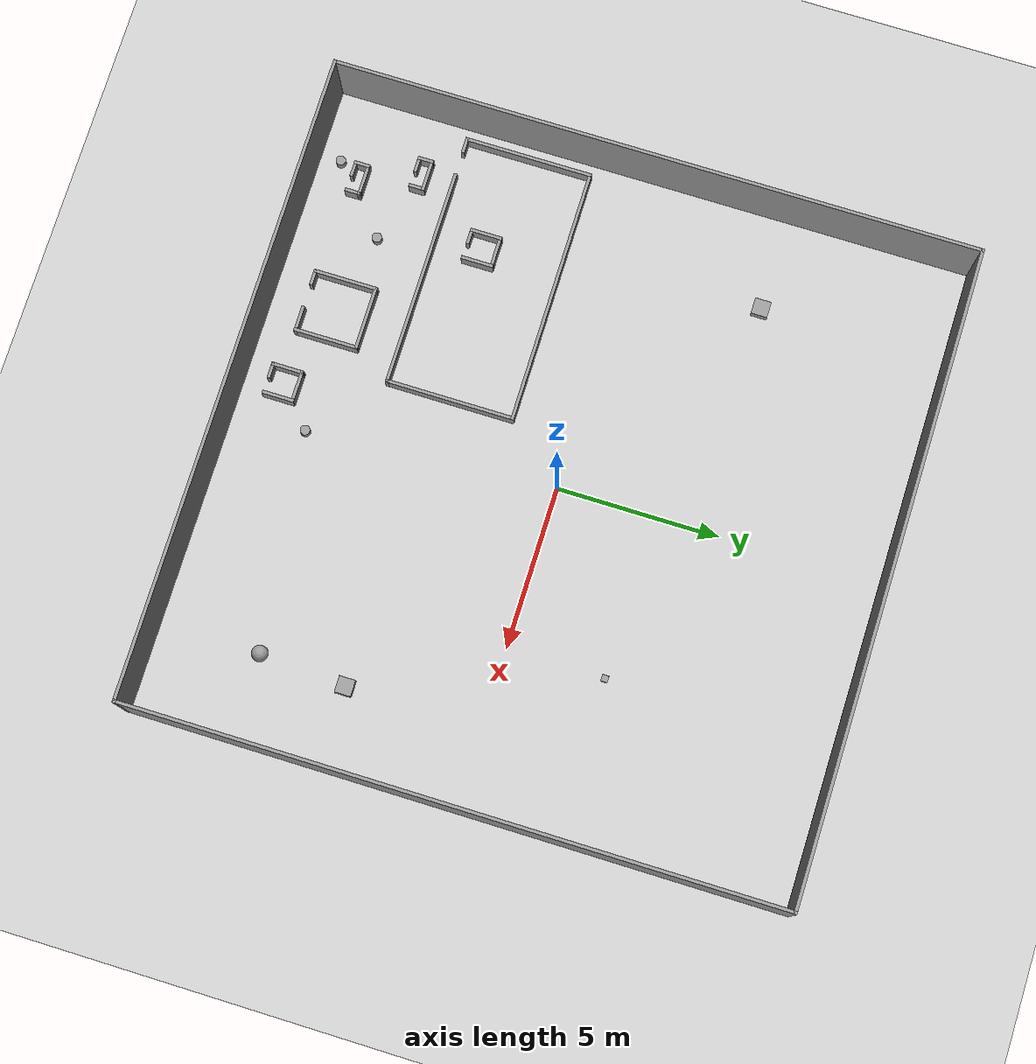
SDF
<sdf version="1.6">
 <world name="default">
  <model name="ground_plane">
   <static>1</static>
   <link name="link">
    <collision name="collision">
     <geometry><plane><normal>0 0 1</normal><size>20 20</size></plane></geometry>
     <surface>
      <contact><collide_bitmask>65535</collide_bitmask></contact>
      <friction><ode><mu>100</mu><mu2>50</mu2></ode></friction>
     </surface>
    </collision>
    <visual name="visual">
     <cast_shadows>0</cast_shadows>
     <geometry><plane><normal>0 0 1</normal><size>20 20</size></plane></geometry>
     <material>
      <script><uri>file://media/materials/scripts/gazebo.material</uri><name>Gazebo/Grey</name></script>
     </material>
    </visual>
   </link>
  </model>
  <model name="outsidewall.sdf">
   <link name="Wall_3">
    <collision name="Wall_3_Collision">
     <geometry><box><size>20 0.10 2.5</size></box></geometry>
     <pose>0 0 1.25 0 -0 0</pose>
    </collision>
    <visual name="Wall_3_Visual">
     <pose>0 0 1.25 0 -0 0</pose>
     <geometry><box><size>20 0.10 2.5</size></box></geometry>
     <material>
      <script><uri>file://media/materials/scripts/gazebo.material</uri><name>Gazebo/Grey</name></script>
      <ambient>1 1 1 1</ambient>
     </material>
     <meta><layer>0</layer></meta>
    </visual>
    <pose>0 9.95 0 0 -0 0</pose>
   </link>
   <link name="Wall_5">
    <collision name="Wall_5_Collision">
     <geometry><box><size>20 0.10 2.5</size></box></geometry>
     <pose>0 0 1.25 0 -0 0</pose>
    </collision>
    <visual name="Wall_5_Visual">
     <pose>0 0 1.25 0 -0 0</pose>
     <geometry><box><size>20 0.10 2.5</size></box></geometry>
     <material>
      <script><uri>file://media/materials/scripts/gazebo.material</uri><name>Gazebo/Grey</name></script>
      <ambient>1 1 1 1</ambient>
     </material>
     <meta><layer>0</layer></meta>
    </visual>
    <pose>-9.95 0 0 0 -0 1.5707</pose>
   </link>
   <link name="Wall_6">
    <collision name="Wall_6_Collision">
     <geometry><box><size>20 0.10 2.5</size></box></geometry>
     <pose>0 0 1.25 0 -0 0</pose>
    </collision>
    <visual name="Wall_6_Visual">
     <pose>0 0 1.25 0 -0 0</pose>
     <geometry><box><size>20 0.10 2.5</size></box></geometry>
     <material>
      <script><uri>file://media/materials/scripts/gazebo.material</uri><name>Gazebo/Grey</name></script>
      <ambient>1 1 1 1</ambient>
     </material>
     <meta><layer>0</layer></meta>
    </visual>
    <pose>0 -9.95 0 0 -0 0</pose>
   </link>
   <link name="Wall_7">
    <collision name="Wall_7_Collision">
     <geometry><box><size>20 0.10 2.5</size></box></geometry>
     <pose>0 0 1.25 0 -0 0</pose>
    </collision>
    <visual name="Wall_7_Visual">
     <pose>0 0 1.25 0 -0 0</pose>
     <geometry><box><size>20 0.10 2.5</size></box></geometry>
     <material>
      <script><uri>file://media/materials/scripts/gazebo.material</uri><name>Gazebo/Grey</name></script>
      <ambient>1 1 1 1</ambient>
     </material>
     <meta><layer>0</layer></meta>
    </visual>
    <pose>9.95 0 0 0 -0 1.5707</pose>
   </link>
   <static>1</static>
  </model>
  <model name="shape3">
   <pose>-5.5 -3.8 0 0 -0 0</pose>
   <link name="Wall_11">
    <collision name="Wall_11_Collision">
     <geometry><box><size>4 0.1 0.5</size></box></geometry>
     <pose>0 0 0.25 0 -0 0</pose>
    </collision>
    <visual name="Wall_11_Visual">
     <pose>0 0 0.25 0 -0 0</pose>
     <geometry><box><size>4 0.1 0.5</size></box></geometry>
     <material>
      <script><uri>file://media/materials/scripts/gazebo.material</uri><name>Gazebo/Grey</name></script>
      <ambient>1 1 1 1</ambient>
     </material>
     <meta><layer>0</layer></meta>
    </visual>
    <pose>-3.95 0 0 0 -0 -1.5708</pose>
   </link>
   <link name="Wall_12">
    <collision name="Wall_12_Collision">
     <geometry><box><size>0.5 0.1 0.5</size></box></geometry>
     <pose>0 0 0.25 0 -0 0</pose>
    </collision>
    <visual name="Wall_12_Visual">
     <pose>0 0 0.25 0 -0 0</pose>
     <geometry><box><size>0.5 0.1 0.5</size></box></geometry>
     <material>
      <script><uri>file://media/materials/scripts/gazebo.material</uri><name>Gazebo/Grey</name></script>
      <ambient>1 1 1 1</ambient>
     </material>
     <meta><layer>0</layer></meta>
    </visual>
    <pose>-3.75 -1.95 0 0 -0 0</pose>
   </link>
   <link name="Wall_7">
    <collision name="Wall_7_Collision">
     <geometry><box><size>8 0.1 0.5</size></box></geometry>
     <pose>0 0 0.25 0 -0 0</pose>
    </collision>
    <visual name="Wall_7_Visual">
     <pose>0 0 0.25 0 -0 0</pose>
     <geometry><box><size>8 0.1 0.5</size></box></geometry>
     <material>
      <script><uri>file://media/materials/scripts/gazebo.material</uri><name>Gazebo/Grey</name></script>
      <ambient>1 1 1 1</ambient>
     </material>
     <meta><layer>0</layer></meta>
    </visual>
    <pose>-0 1.95 0 0 -0 0</pose>
   </link>
   <link name="Wall_8">
    <collision name="Wall_8_Collision">
     <geometry><box><size>4 0.1 0.5</size></box></geometry>
     <pose>0 0 0.25 0 -0 0</pose>
    </collision>
    <visual name="Wall_8_Visual">
     <pose>0 0 0.25 0 -0 0</pose>
     <geometry><box><size>4 0.1 0.5</size></box></geometry>
     <material>
      <script><uri>file://media/materials/scripts/gazebo.material</uri><name>Gazebo/Grey</name></script>
      <ambient>1 1 1 1</ambient>
     </material>
     <meta><layer>0</layer></meta>
    </visual>
    <pose>3.95 0 0 0 -0 -1.5708</pose>
   </link>
   <link name="Wall_9">
    <collision name="Wall_9_Collision">
     <geometry><box><size>6.8 0.1 0.5</size></box></geometry>
     <pose>0 0 0.25 0 -0 0</pose>
    </collision>
    <visual name="Wall_9_Visual">
     <pose>0 0 0.25 0 -0 0</pose>
     <geometry><box><size>6.8 0.1 0.5</size></box></geometry>
     <material>
      <script><uri>file://media/materials/scripts/gazebo.material</uri><name>Gazebo/Grey</name></script>
      <ambient>1 1 1 1</ambient>
     </material>
     <meta><layer>0</layer></meta>
    </visual>
    <pose>0.6 -1.95 0 0 -0 3.14159</pose>
   </link>
   <static>1</static>
  </model>
  <model name="box_d=20">
   <link name="link_2">
    <inertial>
     <mass>1</mass>
     <inertia>
      <ixx>0.166667</ixx>
      <ixy>0</ixy>
      <ixz>0</ixz>
      <iyy>0.166667</iyy>
      <iyz>0</iyz>
      <izz>0.166667</izz>
     </inertia>
    </inertial>
    <pose>5 3 0 0 -0 0</pose>
    <visual name="visual">
     <geometry><box><size>0.2 0.2 0.2</size></box></geometry>
     <material>
      <lighting>1</lighting>
      <script><uri>file://media/materials/scripts/gazebo.material</uri><name>Gazebo/Grey</name></script>
      <shader type="vertex"><normal_map>__default__</normal_map></shader>
      <ambient>0.3 0.3 0.3 1</ambient>
      <diffuse>0.7 0.7 0.7 1</diffuse>
      <specular>0.01 0.01 0.01 1</specular>
      <emissive>0 0 0 1</emissive>
     </material>
    </visual>
    <collision name="collision">
     <geometry><box><size>0.2 0.2 0.2</size></box></geometry>
     <surface>
      <friction>
       <ode><mu>1</mu><mu2>1</mu2><fdir1>0 0 0</fdir1><slip1>0</slip1><slip2>0</slip2></ode>
       <torsional>
        <coefficient>1</coefficient>
        <patch_radius>0</patch_radius>
        <surface_radius>0</surface_radius>
        <use_patch_radius>1</use_patch_radius>
        <ode><slip>0</slip></ode>
       </torsional>
      </friction>
      <bounce><restitution_coefficient>0</restitution_coefficient><threshold>1e+06</threshold></bounce>
      <contact>
       <collide_without_contact>0</collide_without_contact>
       <collide_without_contact_bitmask>1</collide_without_contact_bitmask>
       <collide_bitmask>1</collide_bitmask>
       <ode>
        <soft_cfm>0</soft_cfm>
        <soft_erp>0.2</soft_erp>
        <kp>1e+13</kp>
        <kd>1</kd>
        <max_vel>0.01</max_vel>
        <min_depth>0</min_depth>
       </ode>
       <bullet>
        <split_impulse>1</split_impulse>
        <split_impulse_penetration_threshold>-0.01</split_impulse_penetration_threshold>
        <soft_cfm>0</soft_cfm>
        <soft_erp>0.2</soft_erp>
        <kp>1e+13</kp>
        <kd>1</kd>
       </bullet>
      </contact>
     </surface>
    </collision>
   </link>
   <static>0</static>
  </model>
  <model name="box_d=50">
   <link name="link_2">
    <inertial>
     <mass>1</mass>
     <inertia>
      <ixx>0.166667</ixx>
      <ixy>0</ixy>
      <ixz>0</ixz>
      <iyy>0.166667</iyy>
      <iyz>0</iyz>
      <izz>0.166667</izz>
     </inertia>
    </inertial>
    <pose>-7.05 4.25 0 0 -0 0</pose>
    <visual name="visual">
     <geometry><box><size>0.5 0.5 0.5</size></box></geometry>
     <material>
      <lighting>1</lighting>
      <script><uri>file://media/materials/scripts/gazebo.material</uri><name>Gazebo/Grey</name></script>
      <shader type="vertex"><normal_map>__default__</normal_map></shader>
      <ambient>0.3 0.3 0.3 1</ambient>
      <diffuse>0.7 0.7 0.7 1</diffuse>
      <specular>0.01 0.01 0.01 1</specular>
      <emissive>0 0 0 1</emissive>
     </material>
    </visual>
    <collision name="collision">
     <geometry><box><size>0.5 0.5 0.5</size></box></geometry>
     <surface>
      <friction>
       <ode><mu>1</mu><mu2>1</mu2><fdir1>0 0 0</fdir1><slip1>0</slip1><slip2>0</slip2></ode>
       <torsional>
        <coefficient>1</coefficient>
        <patch_radius>0</patch_radius>
        <surface_radius>0</surface_radius>
        <use_patch_radius>1</use_patch_radius>
        <ode><slip>0</slip></ode>
       </torsional>
      </friction>
      <bounce><restitution_coefficient>0</restitution_coefficient><threshold>1e+06</threshold></bounce>
      <contact>
       <collide_without_contact>0</collide_without_contact>
       <collide_without_contact_bitmask>1</collide_without_contact_bitmask>
       <collide_bitmask>1</collide_bitmask>
       <ode>
        <soft_cfm>0</soft_cfm>
        <soft_erp>0.2</soft_erp>
        <kp>1e+13</kp>
        <kd>1</kd>
        <max_vel>0.01</max_vel>
        <min_depth>0</min_depth>
       </ode>
       <bullet>
        <split_impulse>1</split_impulse>
        <split_impulse_penetration_threshold>-0.01</split_impulse_penetration_threshold>
        <soft_cfm>0</soft_cfm>
        <soft_erp>0.2</soft_erp>
        <kp>1e+13</kp>
        <kd>1</kd>
       </bullet>
      </contact>
     </surface>
    </collision>
   </link>
   <static>0</static>
  </model>
  <model name="cylinder_d=30">
   <link name="link_0">
    <inertial>
     <mass>1</mass>
     <inertia><ixx>0.145833</ixx><ixy>0</ixy><ixz>0</ixz><iyy>0.145833</iyy><iyz>0</iyz><izz>0.125</izz></inertia>
    </inertial>
    <pose>-7.75 -9.25 0 0 -0 0</pose>
    <visual name="visual">
     <geometry><cylinder><radius>0.15</radius><length>0.5</length></cylinder></geometry>
     <material>
      <lighting>1</lighting>
      <script><uri>file://media/materials/scripts/gazebo.material</uri><name>Gazebo/Grey</name></script>
      <shader type="vertex"><normal_map>__default__</normal_map></shader>
      <ambient>0.3 0.3 0.3 1</ambient>
      <diffuse>0.7 0.7 0.7 1</diffuse>
      <specular>0.01 0.01 0.01 1</specular>
      <emissive>0 0 0 1</emissive>
     </material>
    </visual>
    <collision name="collision">
     <geometry><cylinder><radius>0.15</radius><length>0.5</length></cylinder></geometry>
     <surface>
      <friction>
       <ode><mu>1</mu><mu2>1</mu2><fdir1>0 0 0</fdir1><slip1>0</slip1><slip2>0</slip2></ode>
       <torsional>
        <coefficient>1</coefficient>
        <patch_radius>0</patch_radius>
        <surface_radius>0</surface_radius>
        <use_patch_radius>1</use_patch_radius>
        <ode><slip>0</slip></ode>
       </torsional>
      </friction>
      <bounce><restitution_coefficient>0</restitution_coefficient><threshold>1e+06</threshold></bounce>
      <contact>
       <collide_without_contact>0</collide_without_contact>
       <collide_without_contact_bitmask>1</collide_without_contact_bitmask>
       <collide_bitmask>1</collide_bitmask>
       <ode>
        <soft_cfm>0</soft_cfm>
        <soft_erp>0.2</soft_erp>
        <kp>1e+13</kp>
        <kd>1</kd>
        <max_vel>0.01</max_vel>
        <min_depth>0</min_depth>
       </ode>
       <bullet>
        <split_impulse>1</split_impulse>
        <split_impulse_penetration_threshold>-0.01</split_impulse_penetration_threshold>
        <soft_cfm>0</soft_cfm>
        <soft_erp>0.2</soft_erp>
        <kp>1e+13</kp>
        <kd>1</kd>
       </bullet>
      </contact>
     </surface>
    </collision>
   </link>
   <static>0</static>
  </model>
  <model name="box_d=50">
   <link name="link_2">
    <inertial>
     <mass>1</mass>
     <inertia>
      <ixx>0.166667</ixx>
      <ixy>0</ixy>
      <ixz>0</ixz>
      <iyy>0.166667</iyy>
      <iyz>0</iyz>
      <izz>0.166667</izz>
     </inertia>
    </inertial>
    <pose>7.45 -4.15 0 0 -0 0</pose>
    <visual name="visual">
     <geometry><box><size>0.5 0.5 0.5</size></box></geometry>
     <material>
      <lighting>1</lighting>
      <script><uri>file://media/materials/scripts/gazebo.material</uri><name>Gazebo/Grey</name></script>
      <shader type="vertex"><normal_map>__default__</normal_map></shader>
      <ambient>0.3 0.3 0.3 1</ambient>
      <diffuse>0.7 0.7 0.7 1</diffuse>
      <specular>0.01 0.01 0.01 1</specular>
      <emissive>0 0 0 1</emissive>
     </material>
    </visual>
    <collision name="collision">
     <geometry><box><size>0.5 0.5 0.5</size></box></geometry>
     <surface>
      <friction>
       <ode><mu>1</mu><mu2>1</mu2><fdir1>0 0 0</fdir1><slip1>0</slip1><slip2>0</slip2></ode>
       <torsional>
        <coefficient>1</coefficient>
        <patch_radius>0</patch_radius>
        <surface_radius>0</surface_radius>
        <use_patch_radius>1</use_patch_radius>
        <ode><slip>0</slip></ode>
       </torsional>
      </friction>
      <bounce><restitution_coefficient>0</restitution_coefficient><threshold>1e+06</threshold></bounce>
      <contact>
       <collide_without_contact>0</collide_without_contact>
       <collide_without_contact_bitmask>1</collide_without_contact_bitmask>
       <collide_bitmask>1</collide_bitmask>
       <ode>
        <soft_cfm>0</soft_cfm>
        <soft_erp>0.2</soft_erp>
        <kp>1e+13</kp>
        <kd>1</kd>
        <max_vel>0.01</max_vel>
        <min_depth>0</min_depth>
       </ode>
       <bullet>
        <split_impulse>1</split_impulse>
        <split_impulse_penetration_threshold>-0.01</split_impulse_penetration_threshold>
        <soft_cfm>0</soft_cfm>
        <soft_erp>0.2</soft_erp>
        <kp>1e+13</kp>
        <kd>1</kd>
       </bullet>
      </contact>
     </surface>
    </collision>
   </link>
   <static>0</static>
  </model>
  <model name="cylinder_d=30">
   <link name="link_0">
    <inertial>
     <mass>1</mass>
     <inertia><ixx>0.145833</ixx><ixy>0</ixy><ixz>0</ixz><iyy>0.145833</iyy><iyz>0</iyz><izz>0.125</izz></inertia>
    </inertial>
    <pose>0.55 -7.65 0 0 -0 0</pose>
    <visual name="visual">
     <geometry><cylinder><radius>0.15</radius><length>0.5</length></cylinder></geometry>
     <material>
      <lighting>1</lighting>
      <script><uri>file://media/materials/scripts/gazebo.material</uri><name>Gazebo/Grey</name></script>
      <shader type="vertex"><normal_map>__default__</normal_map></shader>
      <ambient>0.3 0.3 0.3 1</ambient>
      <diffuse>0.7 0.7 0.7 1</diffuse>
      <specular>0.01 0.01 0.01 1</specular>
      <emissive>0 0 0 1</emissive>
     </material>
    </visual>
    <collision name="collision">
     <geometry><cylinder><radius>0.15</radius><length>0.5</length></cylinder></geometry>
     <surface>
      <friction>
       <ode><mu>1</mu><mu2>1</mu2><fdir1>0 0 0</fdir1><slip1>0</slip1><slip2>0</slip2></ode>
       <torsional>
        <coefficient>1</coefficient>
        <patch_radius>0</patch_radius>
        <surface_radius>0</surface_radius>
        <use_patch_radius>1</use_patch_radius>
        <ode><slip>0</slip></ode>
       </torsional>
      </friction>
      <bounce><restitution_coefficient>0</restitution_coefficient><threshold>1e+06</threshold></bounce>
      <contact>
       <collide_without_contact>0</collide_without_contact>
       <collide_without_contact_bitmask>1</collide_without_contact_bitmask>
       <collide_bitmask>1</collide_bitmask>
       <ode>
        <soft_cfm>0</soft_cfm>
        <soft_erp>0.2</soft_erp>
        <kp>1e+13</kp>
        <kd>1</kd>
        <max_vel>0.01</max_vel>
        <min_depth>0</min_depth>
       </ode>
       <bullet>
        <split_impulse>1</split_impulse>
        <split_impulse_penetration_threshold>-0.01</split_impulse_penetration_threshold>
        <soft_cfm>0</soft_cfm>
        <soft_erp>0.2</soft_erp>
        <kp>1e+13</kp>
        <kd>1</kd>
       </bullet>
      </contact>
     </surface>
    </collision>
   </link>
   <static>0</static>
  </model>
  <model name="cylinder_d=30">
   <link name="link_0">
    <inertial>
     <mass>1</mass>
     <inertia><ixx>0.145833</ixx><ixy>0</ixy><ixz>0</ixz><iyy>0.145833</iyy><iyz>0</iyz><izz>0.125</izz></inertia>
    </inertial>
    <pose>-5.75 -7.45 0 0 -0 0</pose>
    <visual name="visual">
     <geometry><cylinder><radius>0.15</radius><length>0.5</length></cylinder></geometry>
     <material>
      <lighting>1</lighting>
      <script><uri>file://media/materials/scripts/gazebo.material</uri><name>Gazebo/Grey</name></script>
      <shader type="vertex"><normal_map>__default__</normal_map></shader>
      <ambient>0.3 0.3 0.3 1</ambient>
      <diffuse>0.7 0.7 0.7 1</diffuse>
      <specular>0.01 0.01 0.01 1</specular>
      <emissive>0 0 0 1</emissive>
     </material>
    </visual>
    <collision name="collision">
     <geometry><cylinder><radius>0.15</radius><length>0.5</length></cylinder></geometry>
     <surface>
      <friction>
       <ode><mu>1</mu><mu2>1</mu2><fdir1>0 0 0</fdir1><slip1>0</slip1><slip2>0</slip2></ode>
       <torsional>
        <coefficient>1</coefficient>
        <patch_radius>0</patch_radius>
        <surface_radius>0</surface_radius>
        <use_patch_radius>1</use_patch_radius>
        <ode><slip>0</slip></ode>
       </torsional>
      </friction>
      <bounce><restitution_coefficient>0</restitution_coefficient><threshold>1e+06</threshold></bounce>
      <contact>
       <collide_without_contact>0</collide_without_contact>
       <collide_without_contact_bitmask>1</collide_without_contact_bitmask>
       <collide_bitmask>1</collide_bitmask>
       <ode>
        <soft_cfm>0</soft_cfm>
        <soft_erp>0.2</soft_erp>
        <kp>1e+13</kp>
        <kd>1</kd>
        <max_vel>0.01</max_vel>
        <min_depth>0</min_depth>
       </ode>
       <bullet>
        <split_impulse>1</split_impulse>
        <split_impulse_penetration_threshold>-0.01</split_impulse_penetration_threshold>
        <soft_cfm>0</soft_cfm>
        <soft_erp>0.2</soft_erp>
        <kp>1e+13</kp>
        <kd>1</kd>
       </bullet>
      </contact>
     </surface>
    </collision>
   </link>
   <static>0</static>
  </model>
  <model name="ball_d=50">
   <link name="link_1">
    <inertial>
     <mass>1</mass>
     <inertia><ixx>0.1</ixx><ixy>0</ixy><ixz>0</ixz><iyy>0.1</iyy><iyz>0</iyz><izz>0.1</izz></inertia>
    </inertial>
    <pose>7.25 -6.85 0 0 -0 0</pose>
    <visual name="visual">
     <geometry><sphere><radius>0.25</radius></sphere></geometry>
     <material>
      <lighting>1</lighting>
      <script><uri>file://media/materials/scripts/gazebo.material</uri><name>Gazebo/Grey</name></script>
      <shader type="vertex"><normal_map>__default__</normal_map></shader>
      <ambient>0.3 0.3 0.3 1</ambient>
      <diffuse>0.7 0.7 0.7 1</diffuse>
      <specular>0.01 0.01 0.01 1</specular>
      <emissive>0 0 0 1</emissive>
     </material>
    </visual>
    <collision name="collision">
     <geometry><sphere><radius>0.25</radius></sphere></geometry>
     <surface>
      <friction>
       <ode><mu>1</mu><mu2>1</mu2><fdir1>0 0 0</fdir1><slip1>0</slip1><slip2>0</slip2></ode>
       <torsional>
        <coefficient>1</coefficient>
        <patch_radius>0</patch_radius>
        <surface_radius>0</surface_radius>
        <use_patch_radius>1</use_patch_radius>
        <ode><slip>0</slip></ode>
       </torsional>
      </friction>
      <bounce><restitution_coefficient>0</restitution_coefficient><threshold>1e+06</threshold></bounce>
      <contact>
       <collide_without_contact>0</collide_without_contact>
       <collide_without_contact_bitmask>1</collide_without_contact_bitmask>
       <collide_bitmask>1</collide_bitmask>
       <ode>
        <soft_cfm>0</soft_cfm>
        <soft_erp>0.2</soft_erp>
        <kp>1e+13</kp>
        <kd>1</kd>
        <max_vel>0.01</max_vel>
        <min_depth>0</min_depth>
       </ode>
       <bullet>
        <split_impulse>1</split_impulse>
        <split_impulse_penetration_threshold>-0.01</split_impulse_penetration_threshold>
        <soft_cfm>0</soft_cfm>
        <soft_erp>0.2</soft_erp>
        <kp>1e+13</kp>
        <kd>1</kd>
       </bullet>
      </contact>
     </surface>
    </collision>
   </link>
   <static>0</static>
  </model>
  <model name="shape4">
   <pose>-0.6 -8.7 0 0 -0 0</pose>
   <link name="Wall_14">
    <collision name="Wall_14_Collision">
     <geometry><box><size>1 0.1 0.5</size></box></geometry>
     <pose>0 0 0.25 0 -0 0</pose>
    </collision>
    <visual name="Wall_14_Visual">
     <pose>0 0 0.25 0 -0 0</pose>
     <geometry><box><size>1 0.1 0.5</size></box></geometry>
     <material>
      <script><uri>file://media/materials/scripts/gazebo.material</uri><name>Gazebo/Grey</name></script>
      <ambient>1 1 1 1</ambient>
     </material>
     <meta><layer>0</layer></meta>
    </visual>
    <pose>-0 0.45 0 0 -0 0</pose>
   </link>
   <link name="Wall_15">
    <collision name="Wall_15_Collision">
     <geometry><box><size>1 0.1 0.5</size></box></geometry>
     <pose>0 0 0.25 0 -0 0</pose>
    </collision>
    <visual name="Wall_15_Visual">
     <pose>0 0 0.25 0 -0 0</pose>
     <geometry><box><size>1 0.1 0.5</size></box></geometry>
     <material>
      <script><uri>file://media/materials/scripts/gazebo.material</uri><name>Gazebo/Grey</name></script>
      <ambient>1 1 1 1</ambient>
     </material>
     <meta><layer>0</layer></meta>
    </visual>
    <pose>0.45 -0 0 0 -0 -1.5708</pose>
   </link>
   <link name="Wall_17">
    <collision name="Wall_17_Collision">
     <geometry><box><size>1 0.1 0.5</size></box></geometry>
     <pose>0 0 0.25 0 -0 0</pose>
    </collision>
    <visual name="Wall_17_Visual">
     <pose>0 0 0.25 0 -0 0</pose>
     <geometry><box><size>1 0.1 0.5</size></box></geometry>
     <material>
      <script><uri>file://media/materials/scripts/gazebo.material</uri><name>Gazebo/Grey</name></script>
      <ambient>1 1 1 1</ambient>
     </material>
     <meta><layer>0</layer></meta>
    </visual>
    <pose>-0.45 -0 0 0 -0 -1.5708</pose>
   </link>
   <link name="Wall_18">
    <collision name="Wall_18_Collision">
     <geometry><box><size>0.5 0.1 0.5</size></box></geometry>
     <pose>0 0 0.25 0 -0 0</pose>
    </collision>
    <visual name="Wall_18_Visual">
     <pose>0 0 0.25 0 -0 0</pose>
     <geometry><box><size>0.5 0.1 0.5</size></box></geometry>
     <material>
      <script><uri>file://media/materials/scripts/gazebo.material</uri><name>Gazebo/Grey</name></script>
      <ambient>1 1 1 1</ambient>
     </material>
     <meta><layer>0</layer></meta>
    </visual>
    <pose>-0.25 -0.45 0 0 -0 0</pose>
   </link>
   <static>1</static>
  </model>
  <model name="shape5">
   <pose>-3.2 -7.9 0 0 -0 0</pose>
   <link name="Wall_20">
    <collision name="Wall_20_Collision">
     <geometry><box><size>2 0.1 0.5</size></box></geometry>
     <pose>0 0 0.25 0 -0 0</pose>
    </collision>
    <visual name="Wall_20_Visual">
     <pose>0 0 0.25 0 -0 0</pose>
     <geometry><box><size>2 0.1 0.5</size></box></geometry>
     <material>
      <script><uri>file://media/materials/scripts/gazebo.material</uri><name>Gazebo/Grey</name></script>
      <ambient>1 1 1 1</ambient>
     </material>
     <meta><layer>0</layer></meta>
    </visual>
    <pose>-0 0.95 0 0 -0 0</pose>
   </link>
   <link name="Wall_21">
    <collision name="Wall_21_Collision">
     <geometry><box><size>2 0.1 0.5</size></box></geometry>
     <pose>0 0 0.25 0 -0 0</pose>
    </collision>
    <visual name="Wall_21_Visual">
     <pose>0 0 0.25 0 -0 0</pose>
     <geometry><box><size>2 0.1 0.5</size></box></geometry>
     <material>
      <script><uri>file://media/materials/scripts/gazebo.material</uri><name>Gazebo/Grey</name></script>
      <ambient>1 1 1 1</ambient>
     </material>
     <meta><layer>0</layer></meta>
    </visual>
    <pose>0.95 0 0 0 -0 -1.5708</pose>
   </link>
   <link name="Wall_22">
    <collision name="Wall_22_Collision">
     <geometry><box><size>0.8 0.1 0.5</size></box></geometry>
     <pose>0 0 0.25 0 -0 0</pose>
    </collision>
    <visual name="Wall_22_Visual">
     <pose>0 0 0.25 0 -0 0</pose>
     <geometry><box><size>0.8 0.1 0.5</size></box></geometry>
     <material>
      <script><uri>file://media/materials/scripts/gazebo.material</uri><name>Gazebo/Grey</name></script>
      <ambient>1 1 1 1</ambient>
     </material>
     <meta><layer>0</layer></meta>
    </visual>
    <pose>0.6 -0.95 0 0 -0 3.14159</pose>
   </link>
   <link name="Wall_24">
    <collision name="Wall_24_Collision">
     <geometry><box><size>2 0.1 0.5</size></box></geometry>
     <pose>0 0 0.25 0 -0 0</pose>
    </collision>
    <visual name="Wall_24_Visual">
     <pose>0 0 0.25 0 -0 0</pose>
     <geometry><box><size>2 0.1 0.5</size></box></geometry>
     <material>
      <script><uri>file://media/materials/scripts/gazebo.material</uri><name>Gazebo/Grey</name></script>
      <ambient>1 1 1 1</ambient>
     </material>
     <meta><layer>0</layer></meta>
    </visual>
    <pose>-0.95 0 0 0 -0 -1.5708</pose>
   </link>
   <link name="Wall_25">
    <collision name="Wall_25_Collision">
     <geometry><box><size>0.5 0.1 0.5</size></box></geometry>
     <pose>0 0 0.25 0 -0 0</pose>
    </collision>
    <visual name="Wall_25_Visual">
     <pose>0 0 0.25 0 -0 0</pose>
     <geometry><box><size>0.5 0.1 0.5</size></box></geometry>
     <material>
      <script><uri>file://media/materials/scripts/gazebo.material</uri><name>Gazebo/Grey</name></script>
      <ambient>1 1 1 1</ambient>
     </material>
     <meta><layer>0</layer></meta>
    </visual>
    <pose>-0.75 -0.95 0 0 -0 0</pose>
   </link>
   <static>1</static>
  </model>
  <model name="shape0">
   <pose>-7.3 -8.55 0 0 -0 0</pose>
   <link name="Wall_0">
    <pose>0 0.2 0 0 -0 0</pose>
    <inertial>
     <mass>1</mass>
     <inertia><ixx>1</ixx><ixy>0</ixy><ixz>0</ixz><iyy>1</iyy><iyz>0</iyz><izz>1</izz></inertia>
    </inertial>
    <visual name="Wall_0_Visual">
     <pose>0 0 0.25 0 -0 0</pose>
     <geometry><box><size>1 0.1 0.5</size></box></geometry>
     <material>
      <script><uri>file://media/materials/scripts/gazebo.material</uri><name>Gazebo/Grey</name></script>
      <ambient>1 1 1 1</ambient>
      <shader type="vertex"><normal_map>__default__</normal_map></shader>
      <diffuse>0.7 0.7 0.7 1</diffuse>
      <specular>0.01 0.01 0.01 1</specular>
      <emissive>0 0 0 1</emissive>
     </material>
     <meta><layer>0</layer></meta>
    </visual>
    <collision name="Wall_0_Collision">
     <pose>0 0 0.25 0 -0 0</pose>
     <geometry><box><size>1 0.1 0.5</size></box></geometry>
     <surface>
      <friction>
       <ode><mu>1</mu><mu2>1</mu2><fdir1>0 0 0</fdir1><slip1>0</slip1><slip2>0</slip2></ode>
       <torsional>
        <coefficient>1</coefficient>
        <patch_radius>0</patch_radius>
        <surface_radius>0</surface_radius>
        <use_patch_radius>1</use_patch_radius>
        <ode><slip>0</slip></ode>
       </torsional>
      </friction>
      <bounce><restitution_coefficient>0</restitution_coefficient><threshold>1e+06</threshold></bounce>
      <contact>
       <collide_without_contact>0</collide_without_contact>
       <collide_without_contact_bitmask>1</collide_without_contact_bitmask>
       <collide_bitmask>1</collide_bitmask>
       <ode>
        <soft_cfm>0</soft_cfm>
        <soft_erp>0.2</soft_erp>
        <kp>1e+13</kp>
        <kd>1</kd>
        <max_vel>0.01</max_vel>
        <min_depth>0</min_depth>
       </ode>
       <bullet>
        <split_impulse>1</split_impulse>
        <split_impulse_penetration_threshold>-0.01</split_impulse_penetration_threshold>
        <soft_cfm>0</soft_cfm>
        <soft_erp>0.2</soft_erp>
        <kp>1e+13</kp>
        <kd>1</kd>
       </bullet>
      </contact>
     </surface>
    </collision>
   </link>
   <link name="Wall_2">
    <pose>-0.45 0 0.01 0 0 -1.5708</pose>
    <inertial>
     <mass>1</mass>
     <inertia><ixx>1</ixx><ixy>0</ixy><ixz>0</ixz><iyy>1</iyy><iyz>0</iyz><izz>1</izz></inertia>
    </inertial>
    <visual name="Wall_2_Visual">
     <pose>0 0 0.25 0 -0 0</pose>
     <geometry><box><size>0.5 0.1 0.5</size></box></geometry>
     <material>
      <script><uri>file://media/materials/scripts/gazebo.material</uri><name>Gazebo/Grey</name></script>
      <ambient>1 1 1 1</ambient>
      <shader type="vertex"><normal_map>__default__</normal_map></shader>
      <diffuse>0.7 0.7 0.7 1</diffuse>
      <specular>0.01 0.01 0.01 1</specular>
      <emissive>0 0 0 1</emissive>
     </material>
     <meta><layer>0</layer></meta>
    </visual>
    <collision name="Wall_2_Collision">
     <pose>0 0 0.25 0 -0 0</pose>
     <geometry><box><size>0.5 0.1 0.5</size></box></geometry>
     <surface>
      <friction>
       <ode><mu>1</mu><mu2>1</mu2><fdir1>0 0 0</fdir1><slip1>0</slip1><slip2>0</slip2></ode>
       <torsional>
        <coefficient>1</coefficient>
        <patch_radius>0</patch_radius>
        <surface_radius>0</surface_radius>
        <use_patch_radius>1</use_patch_radius>
        <ode><slip>0</slip></ode>
       </torsional>
      </friction>
      <bounce><restitution_coefficient>0</restitution_coefficient><threshold>1e+06</threshold></bounce>
      <contact>
       <collide_without_contact>0</collide_without_contact>
       <collide_without_contact_bitmask>1</collide_without_contact_bitmask>
       <collide_bitmask>1</collide_bitmask>
       <ode>
        <soft_cfm>0</soft_cfm>
        <soft_erp>0.2</soft_erp>
        <kp>1e+13</kp>
        <kd>1</kd>
        <max_vel>0.01</max_vel>
        <min_depth>0</min_depth>
       </ode>
       <bullet>
        <split_impulse>1</split_impulse>
        <split_impulse_penetration_threshold>-0.01</split_impulse_penetration_threshold>
        <soft_cfm>0</soft_cfm>
        <soft_erp>0.2</soft_erp>
        <kp>1e+13</kp>
        <kd>1</kd>
       </bullet>
      </contact>
     </surface>
    </collision>
   </link>
   <link name="Wall_4">
    <pose>0.45 0 0 0 0 -1.5708</pose>
    <inertial>
     <mass>1</mass>
     <inertia><ixx>1</ixx><ixy>0</ixy><ixz>0</ixz><iyy>1</iyy><iyz>0</iyz><izz>1</izz></inertia>
    </inertial>
    <visual name="Wall_4_Visual">
     <pose>0 0 0.25 0 -0 0</pose>
     <geometry><box><size>0.5 0.1 0.5</size></box></geometry>
     <material>
      <script><uri>file://media/materials/scripts/gazebo.material</uri><name>Gazebo/Grey</name></script>
      <ambient>1 1 1 1</ambient>
      <shader type="vertex"><normal_map>__default__</normal_map></shader>
      <diffuse>0.7 0.7 0.7 1</diffuse>
      <specular>0.01 0.01 0.01 1</specular>
      <emissive>0 0 0 1</emissive>
     </material>
     <meta><layer>0</layer></meta>
    </visual>
    <collision name="Wall_4_Collision">
     <pose>0 0 0.25 0 -0 0</pose>
     <geometry><box><size>0.5 0.1 0.5</size></box></geometry>
     <surface>
      <friction>
       <ode><mu>1</mu><mu2>1</mu2><fdir1>0 0 0</fdir1><slip1>0</slip1><slip2>0</slip2></ode>
       <torsional>
        <coefficient>1</coefficient>
        <patch_radius>0</patch_radius>
        <surface_radius>0</surface_radius>
        <use_patch_radius>1</use_patch_radius>
        <ode><slip>0</slip></ode>
       </torsional>
      </friction>
      <bounce><restitution_coefficient>0</restitution_coefficient><threshold>1e+06</threshold></bounce>
      <contact>
       <collide_without_contact>0</collide_without_contact>
       <collide_without_contact_bitmask>1</collide_without_contact_bitmask>
       <collide_bitmask>1</collide_bitmask>
       <ode>
        <soft_cfm>0</soft_cfm>
        <soft_erp>0.2</soft_erp>
        <kp>1e+13</kp>
        <kd>1</kd>
        <max_vel>0.01</max_vel>
        <min_depth>0</min_depth>
       </ode>
       <bullet>
        <split_impulse>1</split_impulse>
        <split_impulse_penetration_threshold>-0.01</split_impulse_penetration_threshold>
        <soft_cfm>0</soft_cfm>
        <soft_erp>0.2</soft_erp>
        <kp>1e+13</kp>
        <kd>1</kd>
       </bullet>
      </contact>
     </surface>
    </collision>
   </link>
   <link name="Wall_7">
    <pose>-0.25 -0.2 0 0 -0 0</pose>
    <inertial>
     <mass>1</mass>
     <inertia><ixx>1</ixx><ixy>0</ixy><ixz>0</ixz><iyy>1</iyy><iyz>0</iyz><izz>1</izz></inertia>
    </inertial>
    <visual name="Wall_7_Visual">
     <pose>0 0 0.25 0 -0 0</pose>
     <geometry><box><size>0.5 0.1 0.5</size></box></geometry>
     <material>
      <script><uri>file://media/materials/scripts/gazebo.material</uri><name>Gazebo/Grey</name></script>
      <ambient>1 1 1 1</ambient>
      <shader type="vertex"><normal_map>__default__</normal_map></shader>
      <diffuse>0.7 0.7 0.7 1</diffuse>
      <specular>0.01 0.01 0.01 1</specular>
      <emissive>0 0 0 1</emissive>
     </material>
     <meta><layer>0</layer></meta>
    </visual>
    <collision name="Wall_7_Collision">
     <pose>0 0 0.25 0 -0 0</pose>
     <geometry><box><size>0.5 0.1 0.5</size></box></geometry>
     <surface>
      <friction>
       <ode><mu>1</mu><mu2>1</mu2><fdir1>0 0 0</fdir1><slip1>0</slip1><slip2>0</slip2></ode>
       <torsional>
        <coefficient>1</coefficient>
        <patch_radius>0</patch_radius>
        <surface_radius>0</surface_radius>
        <use_patch_radius>1</use_patch_radius>
        <ode><slip>0</slip></ode>
       </torsional>
      </friction>
      <bounce><restitution_coefficient>0</restitution_coefficient><threshold>1e+06</threshold></bounce>
      <contact>
       <collide_without_contact>0</collide_without_contact>
       <collide_without_contact_bitmask>1</collide_without_contact_bitmask>
       <collide_bitmask>1</collide_bitmask>
       <ode>
        <soft_cfm>0</soft_cfm>
        <soft_erp>0.2</soft_erp>
        <kp>1e+13</kp>
        <kd>1</kd>
        <max_vel>0.01</max_vel>
        <min_depth>0</min_depth>
       </ode>
       <bullet>
        <split_impulse>1</split_impulse>
        <split_impulse_penetration_threshold>-0.01</split_impulse_penetration_threshold>
        <soft_cfm>0</soft_cfm>
        <soft_erp>0.2</soft_erp>
        <kp>1e+13</kp>
        <kd>1</kd>
       </bullet>
      </contact>
     </surface>
    </collision>
   </link>
   <static>1</static>
  </model>
  <model name="shape0">
   <pose>-8 -6.75 0 0 -0 0</pose>
   <link name="Wall_0">
    <pose>0 0.2 0 0 -0 0</pose>
    <inertial>
     <mass>1</mass>
     <inertia><ixx>1</ixx><ixy>0</ixy><ixz>0</ixz><iyy>1</iyy><iyz>0</iyz><izz>1</izz></inertia>
    </inertial>
    <visual name="Wall_0_Visual">
     <pose>0 0 0.25 0 -0 0</pose>
     <geometry><box><size>1 0.1 0.5</size></box></geometry>
     <material>
      <script><uri>file://media/materials/scripts/gazebo.material</uri><name>Gazebo/Grey</name></script>
      <ambient>1 1 1 1</ambient>
      <shader type="vertex"><normal_map>__default__</normal_map></shader>
      <diffuse>0.7 0.7 0.7 1</diffuse>
      <specular>0.01 0.01 0.01 1</specular>
      <emissive>0 0 0 1</emissive>
     </material>
     <meta><layer>0</layer></meta>
    </visual>
    <collision name="Wall_0_Collision">
     <pose>0 0 0.25 0 -0 0</pose>
     <geometry><box><size>1 0.1 0.5</size></box></geometry>
     <surface>
      <friction>
       <ode><mu>1</mu><mu2>1</mu2><fdir1>0 0 0</fdir1><slip1>0</slip1><slip2>0</slip2></ode>
       <torsional>
        <coefficient>1</coefficient>
        <patch_radius>0</patch_radius>
        <surface_radius>0</surface_radius>
        <use_patch_radius>1</use_patch_radius>
        <ode><slip>0</slip></ode>
       </torsional>
      </friction>
      <bounce><restitution_coefficient>0</restitution_coefficient><threshold>1e+06</threshold></bounce>
      <contact>
       <collide_without_contact>0</collide_without_contact>
       <collide_without_contact_bitmask>1</collide_without_contact_bitmask>
       <collide_bitmask>1</collide_bitmask>
       <ode>
        <soft_cfm>0</soft_cfm>
        <soft_erp>0.2</soft_erp>
        <kp>1e+13</kp>
        <kd>1</kd>
        <max_vel>0.01</max_vel>
        <min_depth>0</min_depth>
       </ode>
       <bullet>
        <split_impulse>1</split_impulse>
        <split_impulse_penetration_threshold>-0.01</split_impulse_penetration_threshold>
        <soft_cfm>0</soft_cfm>
        <soft_erp>0.2</soft_erp>
        <kp>1e+13</kp>
        <kd>1</kd>
       </bullet>
      </contact>
     </surface>
    </collision>
   </link>
   <link name="Wall_2">
    <pose>-0.45 0 0.01 0 0 -1.5708</pose>
    <inertial>
     <mass>1</mass>
     <inertia><ixx>1</ixx><ixy>0</ixy><ixz>0</ixz><iyy>1</iyy><iyz>0</iyz><izz>1</izz></inertia>
    </inertial>
    <visual name="Wall_2_Visual">
     <pose>0 0 0.25 0 -0 0</pose>
     <geometry><box><size>0.5 0.1 0.5</size></box></geometry>
     <material>
      <script><uri>file://media/materials/scripts/gazebo.material</uri><name>Gazebo/Grey</name></script>
      <ambient>1 1 1 1</ambient>
      <shader type="vertex"><normal_map>__default__</normal_map></shader>
      <diffuse>0.7 0.7 0.7 1</diffuse>
      <specular>0.01 0.01 0.01 1</specular>
      <emissive>0 0 0 1</emissive>
     </material>
     <meta><layer>0</layer></meta>
    </visual>
    <collision name="Wall_2_Collision">
     <pose>0 0 0.25 0 -0 0</pose>
     <geometry><box><size>0.5 0.1 0.5</size></box></geometry>
     <surface>
      <friction>
       <ode><mu>1</mu><mu2>1</mu2><fdir1>0 0 0</fdir1><slip1>0</slip1><slip2>0</slip2></ode>
       <torsional>
        <coefficient>1</coefficient>
        <patch_radius>0</patch_radius>
        <surface_radius>0</surface_radius>
        <use_patch_radius>1</use_patch_radius>
        <ode><slip>0</slip></ode>
       </torsional>
      </friction>
      <bounce><restitution_coefficient>0</restitution_coefficient><threshold>1e+06</threshold></bounce>
      <contact>
       <collide_without_contact>0</collide_without_contact>
       <collide_without_contact_bitmask>1</collide_without_contact_bitmask>
       <collide_bitmask>1</collide_bitmask>
       <ode>
        <soft_cfm>0</soft_cfm>
        <soft_erp>0.2</soft_erp>
        <kp>1e+13</kp>
        <kd>1</kd>
        <max_vel>0.01</max_vel>
        <min_depth>0</min_depth>
       </ode>
       <bullet>
        <split_impulse>1</split_impulse>
        <split_impulse_penetration_threshold>-0.01</split_impulse_penetration_threshold>
        <soft_cfm>0</soft_cfm>
        <soft_erp>0.2</soft_erp>
        <kp>1e+13</kp>
        <kd>1</kd>
       </bullet>
      </contact>
     </surface>
    </collision>
   </link>
   <link name="Wall_4">
    <pose>0.45 0 0 0 0 -1.5708</pose>
    <inertial>
     <mass>1</mass>
     <inertia><ixx>1</ixx><ixy>0</ixy><ixz>0</ixz><iyy>1</iyy><iyz>0</iyz><izz>1</izz></inertia>
    </inertial>
    <visual name="Wall_4_Visual">
     <pose>0 0 0.25 0 -0 0</pose>
     <geometry><box><size>0.5 0.1 0.5</size></box></geometry>
     <material>
      <script><uri>file://media/materials/scripts/gazebo.material</uri><name>Gazebo/Grey</name></script>
      <ambient>1 1 1 1</ambient>
      <shader type="vertex"><normal_map>__default__</normal_map></shader>
      <diffuse>0.7 0.7 0.7 1</diffuse>
      <specular>0.01 0.01 0.01 1</specular>
      <emissive>0 0 0 1</emissive>
     </material>
     <meta><layer>0</layer></meta>
    </visual>
    <collision name="Wall_4_Collision">
     <pose>0 0 0.25 0 -0 0</pose>
     <geometry><box><size>0.5 0.1 0.5</size></box></geometry>
     <surface>
      <friction>
       <ode><mu>1</mu><mu2>1</mu2><fdir1>0 0 0</fdir1><slip1>0</slip1><slip2>0</slip2></ode>
       <torsional>
        <coefficient>1</coefficient>
        <patch_radius>0</patch_radius>
        <surface_radius>0</surface_radius>
        <use_patch_radius>1</use_patch_radius>
        <ode><slip>0</slip></ode>
       </torsional>
      </friction>
      <bounce><restitution_coefficient>0</restitution_coefficient><threshold>1e+06</threshold></bounce>
      <contact>
       <collide_without_contact>0</collide_without_contact>
       <collide_without_contact_bitmask>1</collide_without_contact_bitmask>
       <collide_bitmask>1</collide_bitmask>
       <ode>
        <soft_cfm>0</soft_cfm>
        <soft_erp>0.2</soft_erp>
        <kp>1e+13</kp>
        <kd>1</kd>
        <max_vel>0.01</max_vel>
        <min_depth>0</min_depth>
       </ode>
       <bullet>
        <split_impulse>1</split_impulse>
        <split_impulse_penetration_threshold>-0.01</split_impulse_penetration_threshold>
        <soft_cfm>0</soft_cfm>
        <soft_erp>0.2</soft_erp>
        <kp>1e+13</kp>
        <kd>1</kd>
       </bullet>
      </contact>
     </surface>
    </collision>
   </link>
   <link name="Wall_7">
    <pose>-0.25 -0.2 0 0 -0 0</pose>
    <inertial>
     <mass>1</mass>
     <inertia><ixx>1</ixx><ixy>0</ixy><ixz>0</ixz><iyy>1</iyy><iyz>0</iyz><izz>1</izz></inertia>
    </inertial>
    <visual name="Wall_7_Visual">
     <pose>0 0 0.25 0 -0 0</pose>
     <geometry><box><size>0.5 0.1 0.5</size></box></geometry>
     <material>
      <script><uri>file://media/materials/scripts/gazebo.material</uri><name>Gazebo/Grey</name></script>
      <ambient>1 1 1 1</ambient>
      <shader type="vertex"><normal_map>__default__</normal_map></shader>
      <diffuse>0.7 0.7 0.7 1</diffuse>
      <specular>0.01 0.01 0.01 1</specular>
      <emissive>0 0 0 1</emissive>
     </material>
     <meta><layer>0</layer></meta>
    </visual>
    <collision name="Wall_7_Collision">
     <pose>0 0 0.25 0 -0 0</pose>
     <geometry><box><size>0.5 0.1 0.5</size></box></geometry>
     <surface>
      <friction>
       <ode><mu>1</mu><mu2>1</mu2><fdir1>0 0 0</fdir1><slip1>0</slip1><slip2>0</slip2></ode>
       <torsional>
        <coefficient>1</coefficient>
        <patch_radius>0</patch_radius>
        <surface_radius>0</surface_radius>
        <use_patch_radius>1</use_patch_radius>
        <ode><slip>0</slip></ode>
       </torsional>
      </friction>
      <bounce><restitution_coefficient>0</restitution_coefficient><threshold>1e+06</threshold></bounce>
      <contact>
       <collide_without_contact>0</collide_without_contact>
       <collide_without_contact_bitmask>1</collide_without_contact_bitmask>
       <collide_bitmask>1</collide_bitmask>
       <ode>
        <soft_cfm>0</soft_cfm>
        <soft_erp>0.2</soft_erp>
        <kp>1e+13</kp>
        <kd>1</kd>
        <max_vel>0.01</max_vel>
        <min_depth>0</min_depth>
       </ode>
       <bullet>
        <split_impulse>1</split_impulse>
        <split_impulse_penetration_threshold>-0.01</split_impulse_penetration_threshold>
        <soft_cfm>0</soft_cfm>
        <soft_erp>0.2</soft_erp>
        <kp>1e+13</kp>
        <kd>1</kd>
       </bullet>
      </contact>
     </surface>
    </collision>
   </link>
   <static>1</static>
  </model>
  <model name="shape4">
   <pose>-6.3 -4.3 0 0 -0 0</pose>
   <link name="Wall_14">
    <collision name="Wall_14_Collision">
     <geometry><box><size>1 0.1 0.5</size></box></geometry>
     <pose>0 0 0.25 0 -0 0</pose>
    </collision>
    <visual name="Wall_14_Visual">
     <pose>0 0 0.25 0 -0 0</pose>
     <geometry><box><size>1 0.1 0.5</size></box></geometry>
     <material>
      <script><uri>file://media/materials/scripts/gazebo.material</uri><name>Gazebo/Grey</name></script>
      <ambient>1 1 1 1</ambient>
     </material>
     <meta><layer>0</layer></meta>
    </visual>
    <pose>-0 0.45 0 0 -0 0</pose>
   </link>
   <link name="Wall_15">
    <collision name="Wall_15_Collision">
     <geometry><box><size>1 0.1 0.5</size></box></geometry>
     <pose>0 0 0.25 0 -0 0</pose>
    </collision>
    <visual name="Wall_15_Visual">
     <pose>0 0 0.25 0 -0 0</pose>
     <geometry><box><size>1 0.1 0.5</size></box></geometry>
     <material>
      <script><uri>file://media/materials/scripts/gazebo.material</uri><name>Gazebo/Grey</name></script>
      <ambient>1 1 1 1</ambient>
     </material>
     <meta><layer>0</layer></meta>
    </visual>
    <pose>0.45 -0 0 0 -0 -1.5708</pose>
   </link>
   <link name="Wall_17">
    <collision name="Wall_17_Collision">
     <geometry><box><size>1 0.1 0.5</size></box></geometry>
     <pose>0 0 0.25 0 -0 0</pose>
    </collision>
    <visual name="Wall_17_Visual">
     <pose>0 0 0.25 0 -0 0</pose>
     <geometry><box><size>1 0.1 0.5</size></box></geometry>
     <material>
      <script><uri>file://media/materials/scripts/gazebo.material</uri><name>Gazebo/Grey</name></script>
      <ambient>1 1 1 1</ambient>
     </material>
     <meta><layer>0</layer></meta>
    </visual>
    <pose>-0.45 -0 0 0 -0 -1.5708</pose>
   </link>
   <link name="Wall_18">
    <collision name="Wall_18_Collision">
     <geometry><box><size>0.5 0.1 0.5</size></box></geometry>
     <pose>0 0 0.25 0 -0 0</pose>
    </collision>
    <visual name="Wall_18_Visual">
     <pose>0 0 0.25 0 -0 0</pose>
     <geometry><box><size>0.5 0.1 0.5</size></box></geometry>
     <material>
      <script><uri>file://media/materials/scripts/gazebo.material</uri><name>Gazebo/Grey</name></script>
      <ambient>1 1 1 1</ambient>
     </material>
     <meta><layer>0</layer></meta>
    </visual>
    <pose>-0.25 -0.45 0 0 -0 0</pose>
   </link>
   <static>1</static>
  </model>
 </world>
</sdf>
